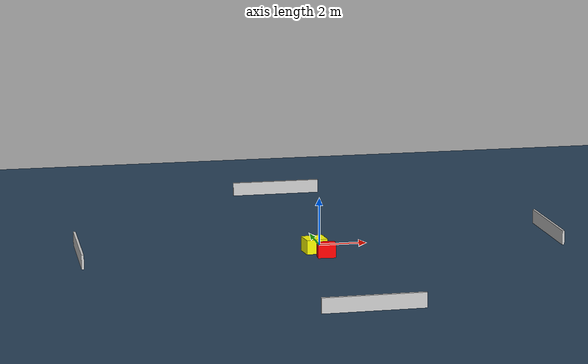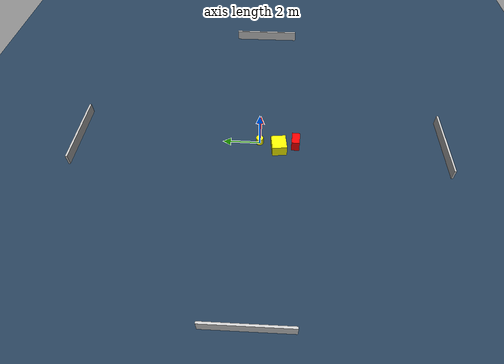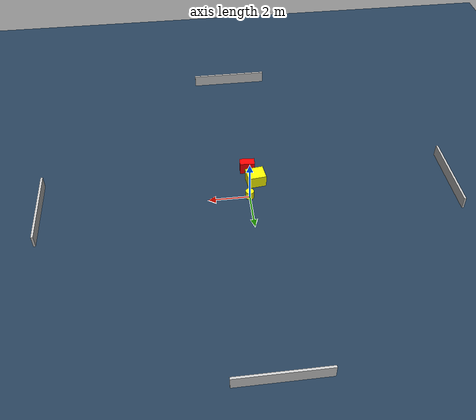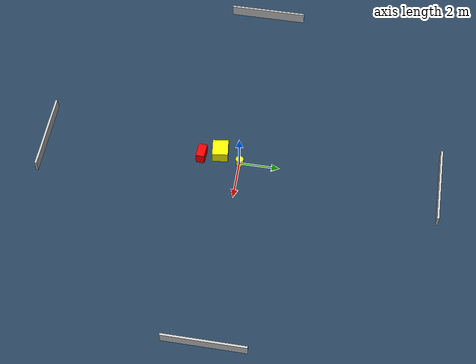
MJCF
<?xml version="1.0" ?>
<mujoco model="generated_environment">
  <option timestep="0.01" integrator="RK4" cone="elliptic"/>
  <default>
    <geom density="1"/>
  </default>
  <asset>
    <texture builtin="gradient" height="3072" name="skybox" rgb1="0.3 0.5 0.7" rgb2="0 0 0" type="skybox" width="512"/>
    <texture builtin="checker" height="300" name="groundplane" rgb1="0.2 0.3 0.4" rgb2="0.1 0.2 0.3" type="2d" width="300"/>
    <material name="groundplane" reflectance="0.2" texrepeat="5 5" texture="groundplane"/>
  </asset>
  <worldbody>
    <light dir="0 0 -1" directional="true" pos="0 0 1.5"/>
    <geom condim="3" friction="0.5 0.005 0.001" material="groundplane" name="floor" pos="0 0 0" size="0 0 0.05" type="plane"/>
    <body name="walls">
      <geom name="wall_1" condim="4" pos="-10.0 0.0 0.3" rgba="0.800000011920929 0.800000011920929 0.800000011920929 1.0" size="0.05 2.0 0.3" type="box"/>
      <geom name="wall_2" condim="4" pos="10.0 0.0 0.3" rgba="0.800000011920929 0.800000011920929 0.800000011920929 1.0" size="0.05 2.0 0.3" type="box"/>
      <geom name="wall_3" condim="4" pos="0.0 -10.0 0.3" rgba="0.800000011920929 0.800000011920929 0.800000011920929 1.0" size="2.0 0.05 0.3" type="box"/>
      <geom name="wall_4" condim="4" pos="0.0 10.0 0.3" rgba="0.800000011920929 0.800000011920929 0.800000011920929 1.0" size="2.0 0.05 0.3" type="box"/>
    </body>
    <body name="robot">
      <joint name="joint_x" type="slide" pos="0 0 0" axis="1 0 0"/>
      <joint name="joint_y" type="slide" pos="0 0 0" axis="0 1 0"/>
      <geom name="robot" type="cylinder" pos="0.0 0.0 0.2" size="0.2 0.2 0.0" mass="5.0" friction="1.0 0.005 0.0001" condim="4" rgba="1.0 1.0 0.0 1.0"/>
    </body>
    <body name="obstacle_1_movable">
      <geom name="obstacle_1_movable" condim="4" pos="-0.41815842304873874 -1.0513808271187906 0.3" euler="0 0 186.88070987196608" friction="0.0 0.005 0.001" rgba="1.0 1.0 0.0 1.0" size="0.4488916446367226 0.39561038000234167 0.3" type="box" mass="0.1"/>
      <joint type="free"/>
    </body>
    <body name="obstacle_2_static">
      <geom name="obstacle_2_static" condim="4" pos="-0.10578506148323857 -1.963069888537654 0.3" euler="0 0 86.67742641523493" friction="0.0 0.005 0.001" rgba="1.0 0.0 0.0 1.0" size="0.21561534279923325 0.3675157177934104 0.3" type="box"/>
    </body>
  </worldbody>
  <actuator>
    <motor name="actuator_x" joint="joint_x" gear="1" ctrlrange="-1 1"/>
    <motor name="actuator_y" joint="joint_y" gear="1" ctrlrange="-1 1"/>
  </actuator>
</mujoco>
